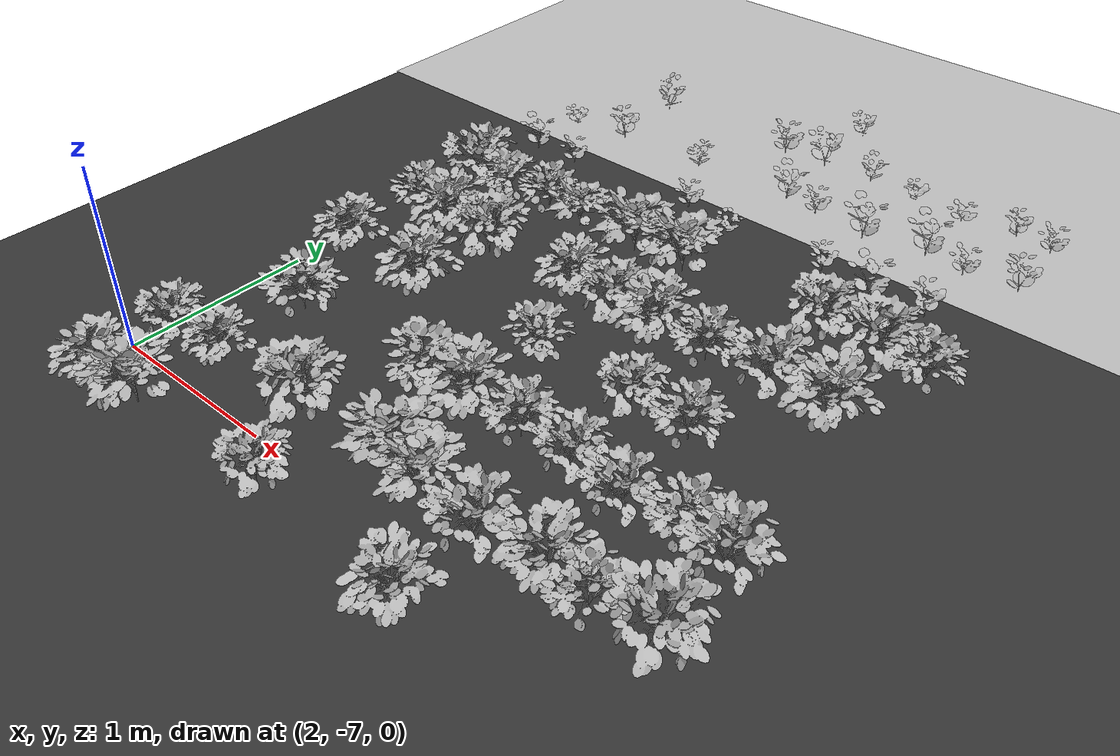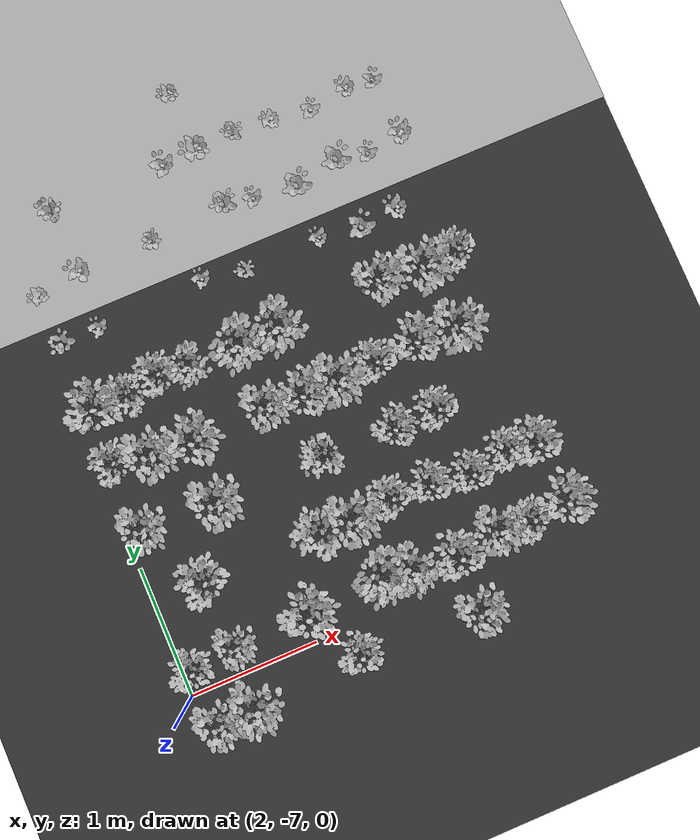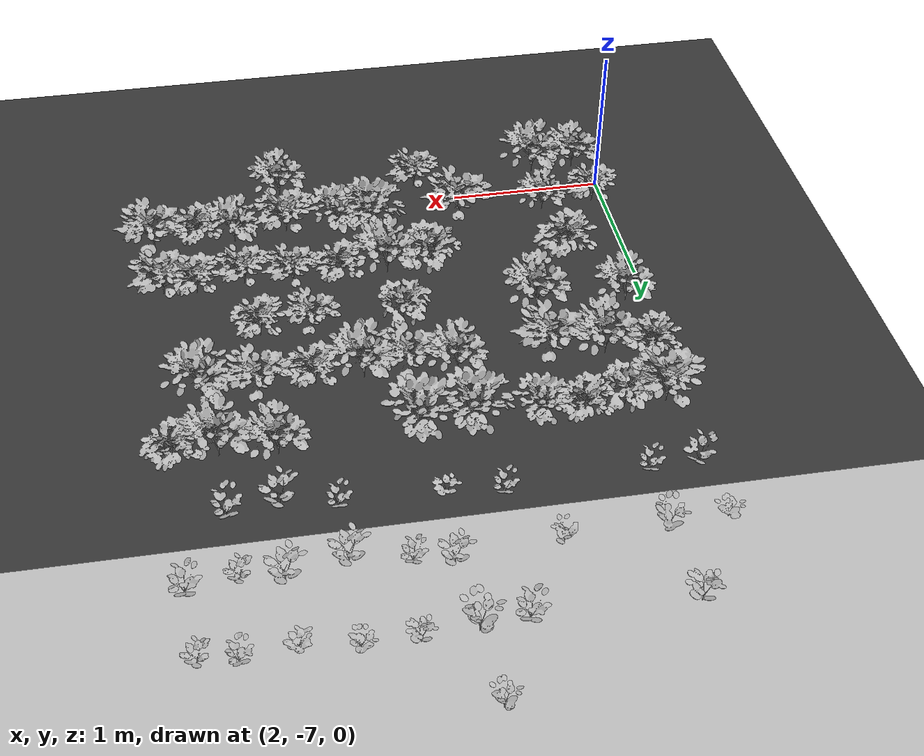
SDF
<sdf version="1.7">
 <world name="default">
  <model name="ground_plane">
   <static>1</static>
   <link name="link">
    <collision name="collision">
     <geometry><plane><normal>0 0 1</normal><size>100 100</size></plane></geometry>
     <surface>
      <contact><collide_bitmask>65535</collide_bitmask></contact>
      <friction><ode><mu>100</mu><mu2>50</mu2></ode></friction>
     </surface>
    </collision>
    <visual name="visual">
     <cast_shadows>0</cast_shadows>
     <geometry><plane><normal>0 0 1</normal><size>100 100</size></plane></geometry>
     <material>
      <ambient>0.2 0.2 0.2 1.0</ambient>
      <diffuse>0.2 0.2 0.2 1.0</diffuse>
      <specular>0.2 0.2 0.2 1.0</specular>
      <emissive>0.2 0.2 0.2 1.0</emissive>
     </material>
    </visual>
   </link>
  </model>
  <model name="ground">
   <pose>5 -0.5 0.01  3.141592654 0 0</pose>
   <static>true</static>
   <link name="body">
    <visual name="visual">
     <cast_shadows>0</cast_shadows>
     <geometry>
      <mesh><uri>file:///home/ifcosta/catkin_ws/src/cnn_line/worlds/models/ground.obj</uri></mesh>
     </geometry>
    </visual>
   </link>
  </model>
  <model name="plt_10007">
   <pose>2.12 -4.23 0.0155 0.0 0.0 -0.46035</pose>
   <static>true</static>
   <link name="body">
    <visual name="visual">
     <geometry>
      <mesh><uri>file:///home/ifcosta/catkin_ws/src/cnn_line/worlds/models/plant12.obj</uri></mesh>
     </geometry>
    </visual>
   </link>
  </model>
  <model name="plt_20007">
   <pose>2.12 -7.23 0.0155 0.0 0.0 -0.53312</pose>
   <static>true</static>
   <link name="body">
    <visual name="visual">
     <geometry>
      <mesh><uri>file:///home/ifcosta/catkin_ws/src/cnn_line/worlds/models/plant21.obj</uri></mesh>
     </geometry>
    </visual>
   </link>
  </model>
  <model name="plt_10008">
   <pose>2.41 -4.22 0.0153 0.0 0.0 0.11484</pose>
   <static>true</static>
   <link name="body">
    <visual name="visual">
     <geometry>
      <mesh><uri>file:///home/ifcosta/catkin_ws/src/cnn_line/worlds/models/plant11.obj</uri></mesh>
     </geometry>
    </visual>
   </link>
  </model>
  <model name="plt_20008">
   <pose>2.41 -7.22 0.0153 0.0 0.0 -0.33632</pose>
   <static>true</static>
   <link name="body">
    <visual name="visual">
     <geometry>
      <mesh><uri>file:///home/ifcosta/catkin_ws/src/cnn_line/worlds/models/plant22.obj</uri></mesh>
     </geometry>
    </visual>
   </link>
  </model>
  <model name="plt_10011">
   <pose>3.26 -4.18 0.0165 0.0 0.0 0.14861</pose>
   <static>true</static>
   <link name="body">
    <visual name="visual">
     <geometry>
      <mesh><uri>file:///home/ifcosta/catkin_ws/src/cnn_line/worlds/models/plant11.obj</uri></mesh>
     </geometry>
    </visual>
   </link>
  </model>
  <model name="plt_20011">
   <pose>3.26 -7.18 0.0165 0.0 0.0 -0.31515</pose>
   <static>true</static>
   <link name="body">
    <visual name="visual">
     <geometry>
      <mesh><uri>file:///home/ifcosta/catkin_ws/src/cnn_line/worlds/models/plant20.obj</uri></mesh>
     </geometry>
    </visual>
   </link>
  </model>
  <model name="plt_10012">
   <pose>3.58 -4.24 0.012 0.0 0.0 -1.2011</pose>
   <static>true</static>
   <link name="body">
    <visual name="visual">
     <geometry>
      <mesh><uri>file:///home/ifcosta/catkin_ws/src/cnn_line/worlds/models/plant10.obj</uri></mesh>
     </geometry>
    </visual>
   </link>
  </model>
  <model name="plt_10014">
   <pose>4.19 -4.23 0.0128 0.0 0.0 0.37589</pose>
   <static>true</static>
   <link name="body">
    <visual name="visual">
     <geometry>
      <mesh><uri>file:///home/ifcosta/catkin_ws/src/cnn_line/worlds/models/plant11.obj</uri></mesh>
     </geometry>
    </visual>
   </link>
  </model>
  <model name="plt_20014">
   <pose>4.19 -7.23 0.0128 0.0 0.0 -0.44411</pose>
   <static>true</static>
   <link name="body">
    <visual name="visual">
     <geometry>
      <mesh><uri>file:///home/ifcosta/catkin_ws/src/cnn_line/worlds/models/plant21.obj</uri></mesh>
     </geometry>
    </visual>
   </link>
  </model>
  <model name="plt_10015">
   <pose>4.51 -4.29 0.0145 0.0 0.0 -0.54911</pose>
   <static>true</static>
   <link name="body">
    <visual name="visual">
     <geometry>
      <mesh><uri>file:///home/ifcosta/catkin_ws/src/cnn_line/worlds/models/plant13.obj</uri></mesh>
     </geometry>
    </visual>
   </link>
  </model>
  <model name="plt_10016">
   <pose>4.81 -4.25 0.0153 0.0 0.0 0.62297</pose>
   <static>true</static>
   <link name="body">
    <visual name="visual">
     <geometry>
      <mesh><uri>file:///home/ifcosta/catkin_ws/src/cnn_line/worlds/models/plant12.obj</uri></mesh>
     </geometry>
    </visual>
   </link>
  </model>
  <model name="plt_10041">
   <pose>2.08 -3.81 0.0134 0.0 0.0 1.5542</pose>
   <static>true</static>
   <link name="body">
    <visual name="visual">
     <geometry>
      <mesh><uri>file:///home/ifcosta/catkin_ws/src/cnn_line/worlds/models/plant10.obj</uri></mesh>
     </geometry>
    </visual>
   </link>
  </model>
  <model name="plt_20041">
   <pose>2.08 -6.81 0.0134 0.0 0.0 -0.12854</pose>
   <static>true</static>
   <link name="body">
    <visual name="visual">
     <geometry>
      <mesh><uri>file:///home/ifcosta/catkin_ws/src/cnn_line/worlds/models/plant20.obj</uri></mesh>
     </geometry>
    </visual>
   </link>
  </model>
  <model name="plt_10042">
   <pose>2.44 -3.77 0.0154 0.0 0.0 0.84681</pose>
   <static>true</static>
   <link name="body">
    <visual name="visual">
     <geometry>
      <mesh><uri>file:///home/ifcosta/catkin_ws/src/cnn_line/worlds/models/plant12.obj</uri></mesh>
     </geometry>
    </visual>
   </link>
  </model>
  <model name="plt_20042">
   <pose>2.44 -6.77 0.0154 0.0 0.0 -1.5254</pose>
   <static>true</static>
   <link name="body">
    <visual name="visual">
     <geometry>
      <mesh><uri>file:///home/ifcosta/catkin_ws/src/cnn_line/worlds/models/plant20.obj</uri></mesh>
     </geometry>
    </visual>
   </link>
  </model>
  <model name="plt_10044">
   <pose>3.02 -3.76 0.0167 0.0 0.0 -3.1149</pose>
   <static>true</static>
   <link name="body">
    <visual name="visual">
     <geometry>
      <mesh><uri>file:///home/ifcosta/catkin_ws/src/cnn_line/worlds/models/plant11.obj</uri></mesh>
     </geometry>
    </visual>
   </link>
  </model>
  <model name="plt_20044">
   <pose>3.02 -6.76 0.0167 0.0 0.0 0.84562</pose>
   <static>true</static>
   <link name="body">
    <visual name="visual">
     <geometry>
      <mesh><uri>file:///home/ifcosta/catkin_ws/src/cnn_line/worlds/models/plant22.obj</uri></mesh>
     </geometry>
    </visual>
   </link>
  </model>
  <model name="plt_10046">
   <pose>3.63 -3.72 0.0131 0.0 0.0 -1.0301</pose>
   <static>true</static>
   <link name="body">
    <visual name="visual">
     <geometry>
      <mesh><uri>file:///home/ifcosta/catkin_ws/src/cnn_line/worlds/models/plant12.obj</uri></mesh>
     </geometry>
    </visual>
   </link>
  </model>
  <model name="plt_20046">
   <pose>3.63 -6.72 0.0131 0.0 0.0 -1.1763</pose>
   <static>true</static>
   <link name="body">
    <visual name="visual">
     <geometry>
      <mesh><uri>file:///home/ifcosta/catkin_ws/src/cnn_line/worlds/models/plant22.obj</uri></mesh>
     </geometry>
    </visual>
   </link>
  </model>
  <model name="plt_10047">
   <pose>3.85 -3.76 0.0146 0.0 0.0 0.07573</pose>
   <static>true</static>
   <link name="body">
    <visual name="visual">
     <geometry>
      <mesh><uri>file:///home/ifcosta/catkin_ws/src/cnn_line/worlds/models/plant11.obj</uri></mesh>
     </geometry>
    </visual>
   </link>
  </model>
  <model name="plt_20047">
   <pose>3.85 -6.76 0.0146 0.0 0.0 -1.3788</pose>
   <static>true</static>
   <link name="body">
    <visual name="visual">
     <geometry>
      <mesh><uri>file:///home/ifcosta/catkin_ws/src/cnn_line/worlds/models/plant21.obj</uri></mesh>
     </geometry>
    </visual>
   </link>
  </model>
  <model name="plt_10048">
   <pose>4.19 -3.81 0.014 0.0 0.0 -0.7733</pose>
   <static>true</static>
   <link name="body">
    <visual name="visual">
     <geometry>
      <mesh><uri>file:///home/ifcosta/catkin_ws/src/cnn_line/worlds/models/plant13.obj</uri></mesh>
     </geometry>
    </visual>
   </link>
  </model>
  <model name="plt_20048">
   <pose>4.19 -6.81 0.014 0.0 0.0 0.74371</pose>
   <static>true</static>
   <link name="body">
    <visual name="visual">
     <geometry>
      <mesh><uri>file:///home/ifcosta/catkin_ws/src/cnn_line/worlds/models/plant21.obj</uri></mesh>
     </geometry>
    </visual>
   </link>
  </model>
  <model name="plt_10049">
   <pose>4.54 -3.74 0.0166 0.0 0.0 -0.83076</pose>
   <static>true</static>
   <link name="body">
    <visual name="visual">
     <geometry>
      <mesh><uri>file:///home/ifcosta/catkin_ws/src/cnn_line/worlds/models/plant13.obj</uri></mesh>
     </geometry>
    </visual>
   </link>
  </model>
  <model name="plt_20049">
   <pose>4.54 -6.74 0.0166 0.0 0.0 -0.92385</pose>
   <static>true</static>
   <link name="body">
    <visual name="visual">
     <geometry>
      <mesh><uri>file:///home/ifcosta/catkin_ws/src/cnn_line/worlds/models/plant21.obj</uri></mesh>
     </geometry>
    </visual>
   </link>
  </model>
  <model name="plt_10050">
   <pose>4.78 -3.78 0.0175 0.0 0.0 -0.36206</pose>
   <static>true</static>
   <link name="body">
    <visual name="visual">
     <geometry>
      <mesh><uri>file:///home/ifcosta/catkin_ws/src/cnn_line/worlds/models/plant11.obj</uri></mesh>
     </geometry>
    </visual>
   </link>
  </model>
  <model name="plt_20050">
   <pose>4.78 -6.78 0.0175 0.0 0.0 0.54531</pose>
   <static>true</static>
   <link name="body">
    <visual name="visual">
     <geometry>
      <mesh><uri>file:///home/ifcosta/catkin_ws/src/cnn_line/worlds/models/plant20.obj</uri></mesh>
     </geometry>
    </visual>
   </link>
  </model>
  <model name="plt_10051">
   <pose>5.07 -3.73 0.0158 0.0 0.0 0.28568</pose>
   <static>true</static>
   <link name="body">
    <visual name="visual">
     <geometry>
      <mesh><uri>file:///home/ifcosta/catkin_ws/src/cnn_line/worlds/models/plant12.obj</uri></mesh>
     </geometry>
    </visual>
   </link>
  </model>
  <model name="plt_20051">
   <pose>5.07 -6.73 0.0158 0.0 0.0 0.80193</pose>
   <static>true</static>
   <link name="body">
    <visual name="visual">
     <geometry>
      <mesh><uri>file:///home/ifcosta/catkin_ws/src/cnn_line/worlds/models/plant22.obj</uri></mesh>
     </geometry>
    </visual>
   </link>
  </model>
  <model name="plt_10076">
   <pose>2.4 -3.26 0.012 0.0 0.0 -1.705</pose>
   <static>true</static>
   <link name="body">
    <visual name="visual">
     <geometry>
      <mesh><uri>file:///home/ifcosta/catkin_ws/src/cnn_line/worlds/models/plant12.obj</uri></mesh>
     </geometry>
    </visual>
   </link>
  </model>
  <model name="plt_20076">
   <pose>2.4 -6.26 0.012 0.0 0.0 1.2599</pose>
   <static>true</static>
   <link name="body">
    <visual name="visual">
     <geometry>
      <mesh><uri>file:///home/ifcosta/catkin_ws/src/cnn_line/worlds/models/plant21.obj</uri></mesh>
     </geometry>
    </visual>
   </link>
  </model>
  <model name="plt_10079">
   <pose>3.32 -3.27 0.0155 0.0 0.0 0.063623</pose>
   <static>true</static>
   <link name="body">
    <visual name="visual">
     <geometry>
      <mesh><uri>file:///home/ifcosta/catkin_ws/src/cnn_line/worlds/models/plant12.obj</uri></mesh>
     </geometry>
    </visual>
   </link>
  </model>
  <model name="plt_20079">
   <pose>3.32 -6.27 0.0155 0.0 0.0 1.9811</pose>
   <static>true</static>
   <link name="body">
    <visual name="visual">
     <geometry>
      <mesh><uri>file:///home/ifcosta/catkin_ws/src/cnn_line/worlds/models/plant21.obj</uri></mesh>
     </geometry>
    </visual>
   </link>
  </model>
  <model name="plt_10080">
   <pose>3.59 -3.25 0.0162 0.0 0.0 1.4317</pose>
   <static>true</static>
   <link name="body">
    <visual name="visual">
     <geometry>
      <mesh><uri>file:///home/ifcosta/catkin_ws/src/cnn_line/worlds/models/plant13.obj</uri></mesh>
     </geometry>
    </visual>
   </link>
  </model>
  <model name="plt_20080">
   <pose>3.59 -6.25 0.0162 0.0 0.0 -0.019249</pose>
   <static>true</static>
   <link name="body">
    <visual name="visual">
     <geometry>
      <mesh><uri>file:///home/ifcosta/catkin_ws/src/cnn_line/worlds/models/plant22.obj</uri></mesh>
     </geometry>
    </visual>
   </link>
  </model>
  <model name="plt_10081">
   <pose>3.9 -3.23 0.0142 0.0 0.0 -1.3892</pose>
   <static>true</static>
   <link name="body">
    <visual name="visual">
     <geometry>
      <mesh><uri>file:///home/ifcosta/catkin_ws/src/cnn_line/worlds/models/plant11.obj</uri></mesh>
     </geometry>
    </visual>
   </link>
  </model>
  <model name="plt_20081">
   <pose>3.9 -6.23 0.0142 0.0 0.0 0.32521</pose>
   <static>true</static>
   <link name="body">
    <visual name="visual">
     <geometry>
      <mesh><uri>file:///home/ifcosta/catkin_ws/src/cnn_line/worlds/models/plant20.obj</uri></mesh>
     </geometry>
    </visual>
   </link>
  </model>
  <model name="plt_10082">
   <pose>4.21 -3.24 0.0144 0.0 0.0 0.92682</pose>
   <static>true</static>
   <link name="body">
    <visual name="visual">
     <geometry>
      <mesh><uri>file:///home/ifcosta/catkin_ws/src/cnn_line/worlds/models/plant10.obj</uri></mesh>
     </geometry>
    </visual>
   </link>
  </model>
  <model name="plt_20082">
   <pose>4.21 -6.24 0.0144 0.0 0.0 -0.34041</pose>
   <static>true</static>
   <link name="body">
    <visual name="visual">
     <geometry>
      <mesh><uri>file:///home/ifcosta/catkin_ws/src/cnn_line/worlds/models/plant20.obj</uri></mesh>
     </geometry>
    </visual>
   </link>
  </model>
  <model name="plt_10083">
   <pose>4.52 -3.29 0.0153 0.0 0.0 -0.32992</pose>
   <static>true</static>
   <link name="body">
    <visual name="visual">
     <geometry>
      <mesh><uri>file:///home/ifcosta/catkin_ws/src/cnn_line/worlds/models/plant10.obj</uri></mesh>
     </geometry>
    </visual>
   </link>
  </model>
  <model name="plt_20083">
   <pose>4.52 -6.29 0.0153 0.0 0.0 -0.17115</pose>
   <static>true</static>
   <link name="body">
    <visual name="visual">
     <geometry>
      <mesh><uri>file:///home/ifcosta/catkin_ws/src/cnn_line/worlds/models/plant20.obj</uri></mesh>
     </geometry>
    </visual>
   </link>
  </model>
  <model name="plt_10084">
   <pose>4.83 -3.24 0.0156 0.0 0.0 0.58587</pose>
   <static>true</static>
   <link name="body">
    <visual name="visual">
     <geometry>
      <mesh><uri>file:///home/ifcosta/catkin_ws/src/cnn_line/worlds/models/plant11.obj</uri></mesh>
     </geometry>
    </visual>
   </link>
  </model>
  <model name="plt_20084">
   <pose>4.83 -6.24 0.0156 0.0 0.0 0.25327</pose>
   <static>true</static>
   <link name="body">
    <visual name="visual">
     <geometry>
      <mesh><uri>file:///home/ifcosta/catkin_ws/src/cnn_line/worlds/models/plant20.obj</uri></mesh>
     </geometry>
    </visual>
   </link>
  </model>
  <model name="plt_10085">
   <pose>5.04 -3.27 0.013 0.0 0.0 -0.35074</pose>
   <static>true</static>
   <link name="body">
    <visual name="visual">
     <geometry>
      <mesh><uri>file:///home/ifcosta/catkin_ws/src/cnn_line/worlds/models/plant11.obj</uri></mesh>
     </geometry>
    </visual>
   </link>
  </model>
  <model name="plt_20085">
   <pose>5.04 -6.27 0.013 0.0 0.0 0.67975</pose>
   <static>true</static>
   <link name="body">
    <visual name="visual">
     <geometry>
      <mesh><uri>file:///home/ifcosta/catkin_ws/src/cnn_line/worlds/models/plant21.obj</uri></mesh>
     </geometry>
    </visual>
   </link>
  </model>
  <model name="plt_20109">
   <pose>2.14 -5.72 0.0145 0.0 0.0 -0.76436</pose>
   <static>true</static>
   <link name="body">
    <visual name="visual">
     <geometry>
      <mesh><uri>file:///home/ifcosta/catkin_ws/src/cnn_line/worlds/models/plant21.obj</uri></mesh>
     </geometry>
    </visual>
   </link>
  </model>
  <model name="plt_20111">
   <pose>2.71 -5.75 0.0155 0.0 0.0 0.06738</pose>
   <static>true</static>
   <link name="body">
    <visual name="visual">
     <geometry>
      <mesh><uri>file:///home/ifcosta/catkin_ws/src/cnn_line/worlds/models/plant22.obj</uri></mesh>
     </geometry>
    </visual>
   </link>
  </model>
  <model name="plt_10114">
   <pose>3.57 -2.76 0.0151 0.0 0.0 1.4474</pose>
   <static>true</static>
   <link name="body">
    <visual name="visual">
     <geometry>
      <mesh><uri>file:///home/ifcosta/catkin_ws/src/cnn_line/worlds/models/plant11.obj</uri></mesh>
     </geometry>
    </visual>
   </link>
  </model>
  <model name="plt_20114">
   <pose>3.57 -5.76 0.0151 0.0 0.0 1.6313</pose>
   <static>true</static>
   <link name="body">
    <visual name="visual">
     <geometry>
      <mesh><uri>file:///home/ifcosta/catkin_ws/src/cnn_line/worlds/models/plant20.obj</uri></mesh>
     </geometry>
    </visual>
   </link>
  </model>
  <model name="plt_20116">
   <pose>4.14 -5.76 0.0131 0.0 0.0 -0.70467</pose>
   <static>true</static>
   <link name="body">
    <visual name="visual">
     <geometry>
      <mesh><uri>file:///home/ifcosta/catkin_ws/src/cnn_line/worlds/models/plant20.obj</uri></mesh>
     </geometry>
    </visual>
   </link>
  </model>
  <model name="plt_20117">
   <pose>4.47 -5.76 0.0148 0.0 0.0 0.25149</pose>
   <static>true</static>
   <link name="body">
    <visual name="visual">
     <geometry>
      <mesh><uri>file:///home/ifcosta/catkin_ws/src/cnn_line/worlds/models/plant20.obj</uri></mesh>
     </geometry>
    </visual>
   </link>
  </model>
  <model name="plt_20143">
   <pose>2.12 -5.2 0.0142 0.0 0.0 0.50167</pose>
   <static>true</static>
   <link name="body">
    <visual name="visual">
     <geometry>
      <mesh><uri>file:///home/ifcosta/catkin_ws/src/cnn_line/worlds/models/plant20.obj</uri></mesh>
     </geometry>
    </visual>
   </link>
  </model>
  <model name="plt_20144">
   <pose>2.4 -5.24 0.0167 0.0 0.0 0.090509</pose>
   <static>true</static>
   <link name="body">
    <visual name="visual">
     <geometry>
      <mesh><uri>file:///home/ifcosta/catkin_ws/src/cnn_line/worlds/models/plant22.obj</uri></mesh>
     </geometry>
    </visual>
   </link>
  </model>
  <model name="plt_20145">
   <pose>2.73 -5.27 0.013 0.0 0.0 0.68435</pose>
   <static>true</static>
   <link name="body">
    <visual name="visual">
     <geometry>
      <mesh><uri>file:///home/ifcosta/catkin_ws/src/cnn_line/worlds/models/plant22.obj</uri></mesh>
     </geometry>
    </visual>
   </link>
  </model>
  <model name="plt_20147">
   <pose>3.32 -5.24 0.0153 0.0 0.0 -0.69273</pose>
   <static>true</static>
   <link name="body">
    <visual name="visual">
     <geometry>
      <mesh><uri>file:///home/ifcosta/catkin_ws/src/cnn_line/worlds/models/plant21.obj</uri></mesh>
     </geometry>
    </visual>
   </link>
  </model>
  <model name="plt_20148">
   <pose>3.61 -5.27 0.0126 0.0 0.0 0.10816</pose>
   <static>true</static>
   <link name="body">
    <visual name="visual">
     <geometry>
      <mesh><uri>file:///home/ifcosta/catkin_ws/src/cnn_line/worlds/models/plant21.obj</uri></mesh>
     </geometry>
    </visual>
   </link>
  </model>
  <model name="plt_20149">
   <pose>3.89 -5.27 0.0139 0.0 0.0 -0.22898</pose>
   <static>true</static>
   <link name="body">
    <visual name="visual">
     <geometry>
      <mesh><uri>file:///home/ifcosta/catkin_ws/src/cnn_line/worlds/models/plant22.obj</uri></mesh>
     </geometry>
    </visual>
   </link>
  </model>
  <model name="plt_20150">
   <pose>4.19 -5.26 0.0145 0.0 0.0 0.19457</pose>
   <static>true</static>
   <link name="body">
    <visual name="visual">
     <geometry>
      <mesh><uri>file:///home/ifcosta/catkin_ws/src/cnn_line/worlds/models/plant20.obj</uri></mesh>
     </geometry>
    </visual>
   </link>
  </model>
  <model name="plt_20151">
   <pose>4.53 -5.23 0.0137 0.0 0.0 0.22957</pose>
   <static>true</static>
   <link name="body">
    <visual name="visual">
     <geometry>
      <mesh><uri>file:///home/ifcosta/catkin_ws/src/cnn_line/worlds/models/plant21.obj</uri></mesh>
     </geometry>
    </visual>
   </link>
  </model>
  <model name="plt_20152">
   <pose>4.87 -5.25 0.0126 0.0 0.0 -0.27183</pose>
   <static>true</static>
   <link name="body">
    <visual name="visual">
     <geometry>
      <mesh><uri>file:///home/ifcosta/catkin_ws/src/cnn_line/worlds/models/plant22.obj</uri></mesh>
     </geometry>
    </visual>
   </link>
  </model>
  <model name="plt_20177">
   <pose>2.15 -4.77 0.0153 0.0 0.0 1.2228</pose>
   <static>true</static>
   <link name="body">
    <visual name="visual">
     <geometry>
      <mesh><uri>file:///home/ifcosta/catkin_ws/src/cnn_line/worlds/models/plant22.obj</uri></mesh>
     </geometry>
    </visual>
   </link>
  </model>
  <model name="plt_20178">
   <pose>2.4 -4.78 0.0163 0.0 0.0 1.3093</pose>
   <static>true</static>
   <link name="body">
    <visual name="visual">
     <geometry>
      <mesh><uri>file:///home/ifcosta/catkin_ws/src/cnn_line/worlds/models/plant20.obj</uri></mesh>
     </geometry>
    </visual>
   </link>
  </model>
  <model name="plt_20179">
   <pose>2.67 -4.72 0.0138 0.0 0.0 0.40865</pose>
   <static>true</static>
   <link name="body">
    <visual name="visual">
     <geometry>
      <mesh><uri>file:///home/ifcosta/catkin_ws/src/cnn_line/worlds/models/plant20.obj</uri></mesh>
     </geometry>
    </visual>
   </link>
  </model>
  <model name="plt_20180">
   <pose>2.92 -4.74 0.0149 0.0 0.0 -2.5939</pose>
   <static>true</static>
   <link name="body">
    <visual name="visual">
     <geometry>
      <mesh><uri>file:///home/ifcosta/catkin_ws/src/cnn_line/worlds/models/plant20.obj</uri></mesh>
     </geometry>
    </visual>
   </link>
  </model>
  <model name="plt_20181">
   <pose>3.32 -4.74 0.0137 0.0 0.0 -1.1457</pose>
   <static>true</static>
   <link name="body">
    <visual name="visual">
     <geometry>
      <mesh><uri>file:///home/ifcosta/catkin_ws/src/cnn_line/worlds/models/plant22.obj</uri></mesh>
     </geometry>
    </visual>
   </link>
  </model>
  <model name="plt_20182">
   <pose>3.64 -4.73 0.018 0.0 0.0 -0.99308</pose>
   <static>true</static>
   <link name="body">
    <visual name="visual">
     <geometry>
      <mesh><uri>file:///home/ifcosta/catkin_ws/src/cnn_line/worlds/models/plant22.obj</uri></mesh>
     </geometry>
    </visual>
   </link>
  </model>
  <model name="plt_20185">
   <pose>4.47 -4.7 0.0139 0.0 0.0 -0.40312</pose>
   <static>true</static>
   <link name="body">
    <visual name="visual">
     <geometry>
      <mesh><uri>file:///home/ifcosta/catkin_ws/src/cnn_line/worlds/models/plant21.obj</uri></mesh>
     </geometry>
    </visual>
   </link>
  </model>
  <model name="plt_20186">
   <pose>4.81 -4.74 0.0149 0.0 0.0 0.11063</pose>
   <static>true</static>
   <link name="body">
    <visual name="visual">
     <geometry>
      <mesh><uri>file:///home/ifcosta/catkin_ws/src/cnn_line/worlds/models/plant22.obj</uri></mesh>
     </geometry>
    </visual>
   </link>
  </model>
  <model name="plt_20187">
   <pose>5.07 -4.73 0.0161 0.0 0.0 0.62098</pose>
   <static>true</static>
   <link name="body">
    <visual name="visual">
     <geometry>
      <mesh><uri>file:///home/ifcosta/catkin_ws/src/cnn_line/worlds/models/plant20.obj</uri></mesh>
     </geometry>
    </visual>
   </link>
  </model>
 </world>
</sdf>
